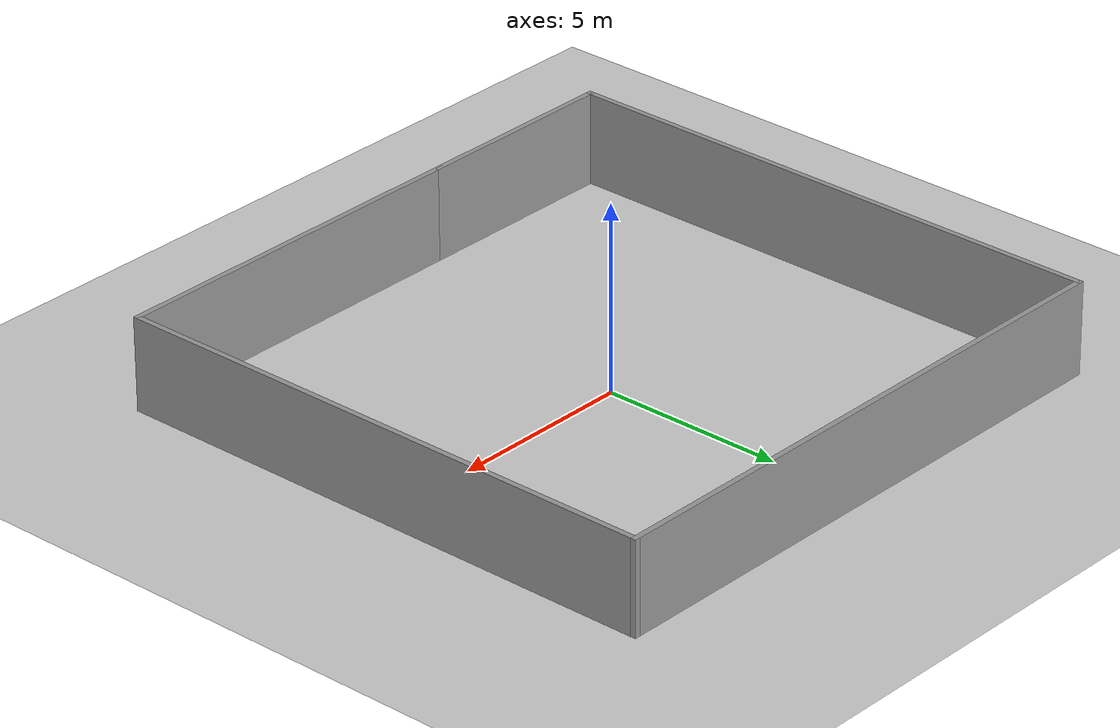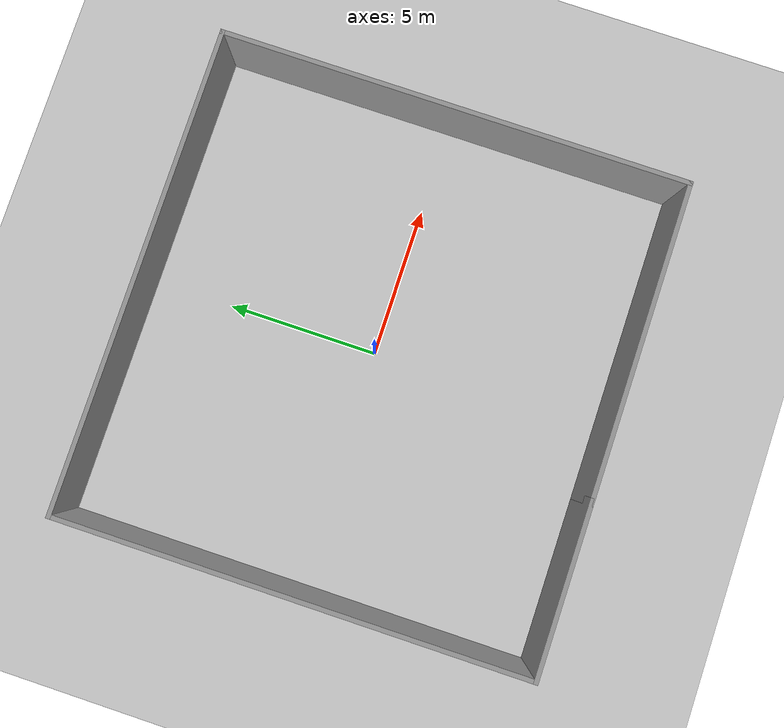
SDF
<sdf version="1.7">
 <world name="default">
  <light name="sun" type="directional">
   <pose>0 0 10 0 -0 0</pose>
   <diffuse>0.8 0.8 0.8 1</diffuse>
   <specular>0.2 0.2 0.2 1</specular>
   <attenuation>
    <range>1000</range>
    <constant>0.9</constant>
    <linear>0.01</linear>
    <quadratic>0.001</quadratic>
   </attenuation>
   <direction>-0.5 0.1 -0.9</direction>
   <spot><inner_angle>0</inner_angle><outer_angle>0</outer_angle><falloff>0</falloff></spot>
  </light>
  <model name="ground_plane">
   <static>1</static>
   <link name="link">
    <collision name="collision">
     <geometry><plane><normal>0 0 1</normal><size>100 100</size></plane></geometry>
     <surface>
      <contact><collide_bitmask>65535</collide_bitmask></contact>
      <friction><ode><mu>100</mu><mu2>50</mu2></ode></friction>
     </surface>
    </collision>
    <visual name="visual">
     <cast_shadows>0</cast_shadows>
     <geometry><plane><normal>0 0 1</normal><size>100 100</size></plane></geometry>
     <material>
      <script><uri>file://media/materials/scripts/gazebo.material</uri><name>Gazebo/Grey</name></script>
     </material>
    </visual>
   </link>
  </model>
  <gravity>0 0 -9.8</gravity>
  <magnetic_field>6e-06 2.3e-05 -4.2e-05</magnetic_field>
  <atmosphere type="adiabatic"/>
  <physics type="ode">
   <max_step_size>0.001</max_step_size>
   <real_time_factor>1</real_time_factor>
   <real_time_update_rate>1000</real_time_update_rate>
  </physics>
  <scene><ambient>0.4 0.4 0.4 1</ambient><background>0.7 0.7 0.7 1</background><shadows>1</shadows></scene>
  <audio><device>default</device></audio>
  <spherical_coordinates>
   <surface_model>EARTH_WGS84</surface_model>
   <latitude_deg>0</latitude_deg>
   <longitude_deg>0</longitude_deg>
   <elevation>0</elevation>
   <heading_deg>0</heading_deg>
  </spherical_coordinates>
  <model name="map13">
   <pose>-0.004606 -0.001126 0 0 -0 0</pose>
   <link name="Wall_0">
    <collision name="Wall_0_Collision">
     <geometry><box><size>10.5 0.15 2.5</size></box></geometry>
     <pose>0 0 1.25 0 -0 0</pose>
    </collision>
    <visual name="Wall_0_Visual">
     <pose>0 0 1.25 0 -0 0</pose>
     <geometry><box><size>10.5 0.15 2.5</size></box></geometry>
     <material>
      <script><uri>file://media/materials/scripts/gazebo.material</uri><name>Gazebo/Grey</name></script>
      <ambient>1 1 1 1</ambient>
     </material>
     <meta><layer>0</layer></meta>
    </visual>
    <pose>2.75 -7.675 0 0 -0 0</pose>
   </link>
   <link name="Wall_1">
    <collision name="Wall_1_Collision">
     <geometry><box><size>15.5 0.15 2.5</size></box></geometry>
     <pose>0 0 1.25 0 -0 0</pose>
    </collision>
    <visual name="Wall_1_Visual">
     <pose>0 0 1.25 0 -0 0</pose>
     <geometry><box><size>15.5 0.15 2.5</size></box></geometry>
     <material>
      <script><uri>file://media/materials/scripts/gazebo.material</uri><name>Gazebo/Grey</name></script>
      <ambient>1 1 1 1</ambient>
     </material>
     <meta><layer>0</layer></meta>
    </visual>
    <pose>7.925 -0 0 0 -0 1.5708</pose>
   </link>
   <link name="Wall_2">
    <collision name="Wall_2_Collision">
     <geometry><box><size>16 0.15 2.5</size></box></geometry>
     <pose>0 0 1.25 0 -0 0</pose>
    </collision>
    <visual name="Wall_2_Visual">
     <pose>0 0 1.25 0 -0 0</pose>
     <geometry><box><size>16 0.15 2.5</size></box></geometry>
     <material>
      <script><uri>file://media/materials/scripts/gazebo.material</uri><name>Gazebo/Grey</name></script>
      <ambient>1 1 1 1</ambient>
     </material>
     <meta><layer>0</layer></meta>
    </visual>
    <pose>-0 7.675 0 0 -0 3.14159</pose>
   </link>
   <link name="Wall_3">
    <collision name="Wall_3_Collision">
     <geometry><box><size>15.5 0.15 2.5</size></box></geometry>
     <pose>0 0 1.25 0 -0 0</pose>
    </collision>
    <visual name="Wall_3_Visual">
     <pose>0 0 1.25 0 -0 0</pose>
     <geometry><box><size>15.5 0.15 2.5</size></box></geometry>
     <material>
      <script><uri>file://media/materials/scripts/gazebo.material</uri><name>Gazebo/Grey</name></script>
      <ambient>1 1 1 1</ambient>
     </material>
     <meta><layer>0</layer></meta>
    </visual>
    <pose>-7.925 -0 0 0 -0 -1.5708</pose>
   </link>
   <link name="Wall_4">
    <collision name="Wall_4_Collision">
     <geometry><box><size>5.75 0.15 2.5</size></box></geometry>
     <pose>0 0 1.25 0 -0 0</pose>
    </collision>
    <visual name="Wall_4_Visual">
     <pose>0 0 1.25 0 -0 0</pose>
     <geometry><box><size>5.75 0.15 2.5</size></box></geometry>
     <material>
      <script><uri>file://media/materials/scripts/gazebo.material</uri><name>Gazebo/Grey</name></script>
      <ambient>1 1 1 1</ambient>
     </material>
     <meta><layer>0</layer></meta>
    </visual>
    <pose>-5.125 -7.675 0 0 -0 0</pose>
   </link>
   <static>1</static>
  </model>
 </world>
</sdf>
